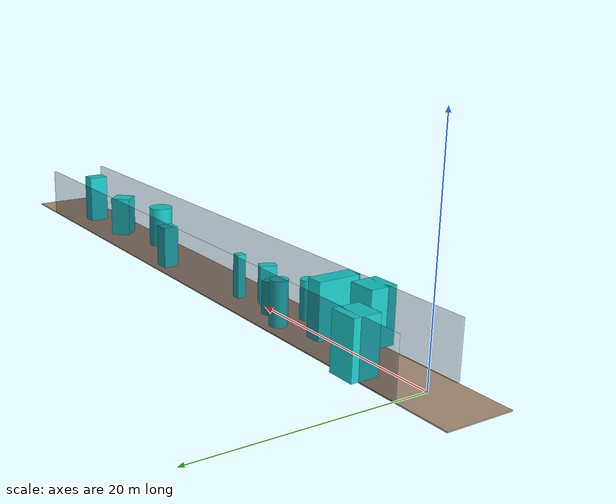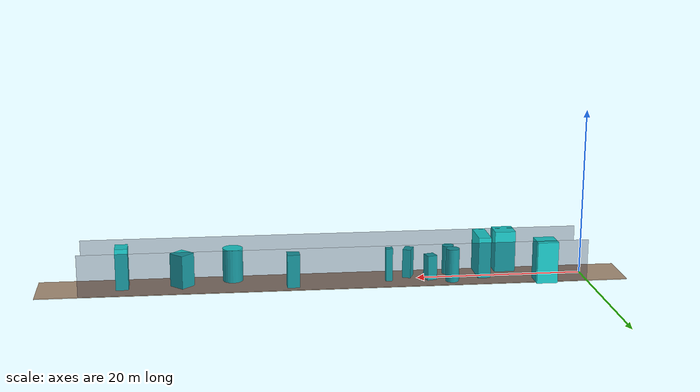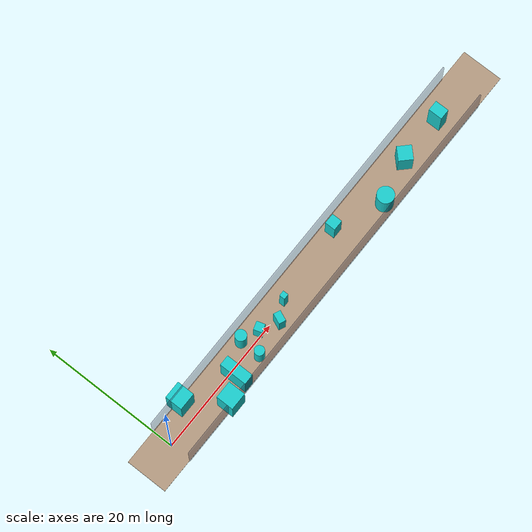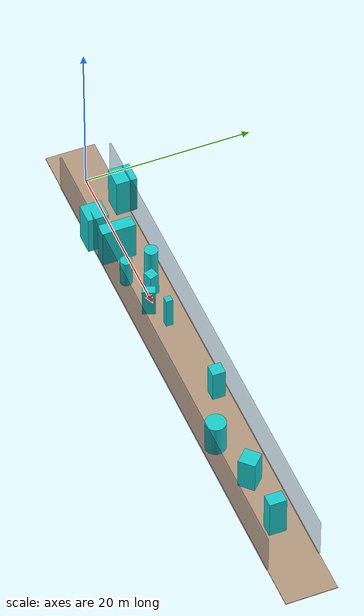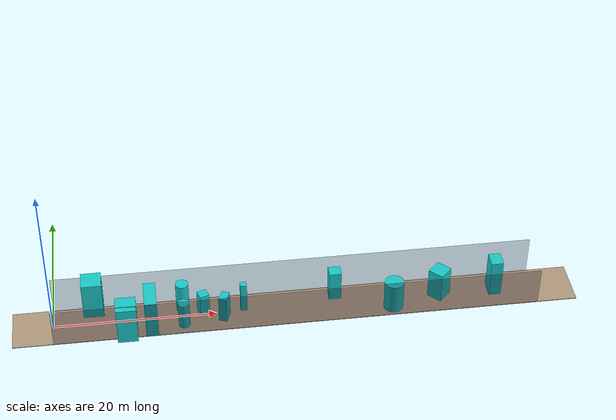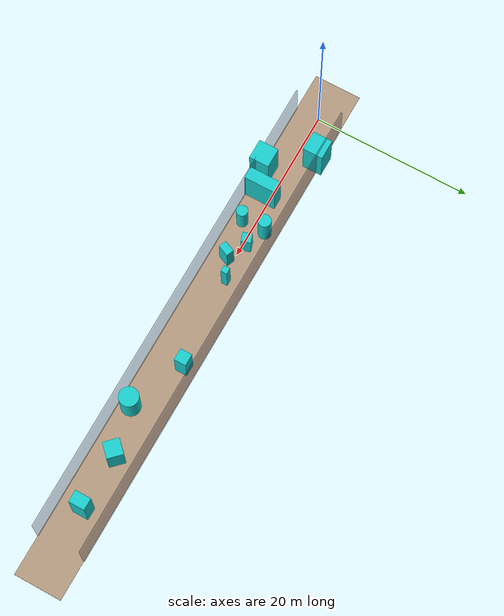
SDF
<sdf version="1.9">
 <world name="corridor">
  <physics type="ode">
   <max_step_size>0.004</max_step_size>
   <real_time_factor>1.0</real_time_factor>
   <real_time_update_rate>250</real_time_update_rate>
  </physics>
  <plugin name="gz::sim::systems::Physics" filename="gz-sim-physics-system"/>
  <plugin name="gz::sim::systems::UserCommands" filename="gz-sim-user-commands-system"/>
  <plugin name="gz::sim::systems::SceneBroadcaster" filename="gz-sim-scene-broadcaster-system"/>
  <plugin name="gz::sim::systems::Contact" filename="gz-sim-contact-system"/>
  <plugin name="gz::sim::systems::Imu" filename="gz-sim-imu-system"/>
  <plugin name="gz::sim::systems::Magnetometer" filename="gz-sim-magnetometer-system"/>
  <plugin name="gz::sim::systems::AirPressure" filename="gz-sim-air-pressure-system"/>
  <plugin name="gz::sim::systems::ApplyLinkWrench" filename="gz-sim-apply-link-wrench-system"/>
  <plugin name="gz::sim::systems::NavSat" filename="gz-sim-navsat-system"/>
  <plugin name="gz::sim::systems::Sensors" filename="gz-sim-sensors-system">
   <render_engine>ogre2</render_engine>
  </plugin>
  <gravity>0 0 -9.8</gravity>
  <magnetic_field>6e-06 2.3e-05 -4.2e-05</magnetic_field>
  <atmosphere type="adiabatic"/>
  <scene>
   <grid>false</grid>
   <ambient>0.6 0.6 0.6 1</ambient>
   <background>0.9 0.4 0.2 1</background>
   <shadows>true</shadows>
   <sky>true</sky>
  </scene>
  <model name="course_ground">
   <static>true</static>
   <pose>30 0 -0.05 0 0 0</pose>
   <link name="link">
    <collision name="collision"><geometry><box><size>70 6 0.1</size></box></geometry></collision>
    <visual name="visual">
     <geometry><box><size>70 6 0.1</size></box></geometry>
     <material>
      <ambient>0.7 0.6 0.5 1</ambient>
      <diffuse>0.7 0.6 0.5 1</diffuse>
      <specular>0.1 0.1 0.1 1</specular>
      <pbr><metal><roughness>0.9</roughness><metalness>0.1</metalness></metal></pbr>
     </material>
    </visual>
   </link>
  </model>
  <light name="sun_main" type="directional">
   <pose>0 0 500 0 0 0</pose>
   <intensity>1.0</intensity>
   <direction>0.3 0.5 -0.8</direction>
   <diffuse>1 1 1 1</diffuse>
   <specular>0.2 0.2 0.2 1</specular>
  </light>
  <light name="sun_fill_1" type="directional">
   <pose>-10 10 10 0 0 0</pose>
   <cast_shadows>false</cast_shadows>
   <intensity>0.6</intensity>
   <direction>0.5 -0.5 -0.5</direction>
   <diffuse>0.1 0.8 0.8 1</diffuse>
   <specular>0.1 0.1 0.1 1</specular>
  </light>
  <light name="sun_fill_2" type="directional">
   <pose>-10 -10 10 0 0 0</pose>
   <cast_shadows>false</cast_shadows>
   <intensity>0.6</intensity>
   <direction>0.5 0.5 -0.5</direction>
   <diffuse>0.1 0.8 0.8 1</diffuse>
   <specular>0.1 0.1 0.1 1</specular>
  </light>
  <model name="wall_left_transparent">
   <pose>30 3 2.5 0 0 0</pose>
   <static>true</static>
   <link name="link">
    <collision name="collision"><geometry><box><size>60 0.2 5</size></box></geometry></collision>
    <visual name="visual">
     <geometry><box><size>60 0.2 5</size></box></geometry>
     <material>
      <ambient>0.1 0.1 0.2 0.3</ambient>
      <diffuse>0.1 0.1 0.2 0.3</diffuse>
      <specular>0.5 0.5 0.5 1</specular>
      <pbr><metal><roughness>0.1</roughness><metalness>0.0</metalness></metal></pbr>
     </material>
    </visual>
   </link>
  </model>
  <model name="wall_right_transparent">
   <pose>30 -3 2.5 0 0 0</pose>
   <static>true</static>
   <link name="link">
    <collision name="collision"><geometry><box><size>60 0.2 5</size></box></geometry></collision>
    <visual name="visual">
     <geometry><box><size>60 0.2 5</size></box></geometry>
     <material>
      <ambient>0.1 0.1 0.2 0.3</ambient>
      <diffuse>0.1 0.1 0.2 0.3</diffuse>
      <specular>0.5 0.5 0.5 1</specular>
      <pbr><metal><roughness>0.1</roughness><metalness>0.0</metalness></metal></pbr>
     </material>
    </visual>
   </link>
  </model>
  <model name="box_blocker_top_left">
   <pose>5 2.5 2.5 0 0 0</pose>
   <static>true</static>
   <link name="link">
    <collision name="c"><geometry><box><size>2.5 2.5 5</size></box></geometry></collision>
    <visual name="v">
     <geometry><box><size>2.5 2.5 5</size></box></geometry>
     <material>
      <ambient>0.1 0.8 0.8 1</ambient>
      <diffuse>0.1 0.8 0.8 1</diffuse>
      <specular>0.5 0.5 0.5 1</specular>
      <pbr><metal><roughness>0.3</roughness><metalness>0.1</metalness></metal></pbr>
     </material>
    </visual>
   </link>
  </model>
  <model name="box_blocker_bottom_right">
   <pose>9 -2.5 2.5 0 0 0</pose>
   <static>true</static>
   <link name="link">
    <collision name="c"><geometry><box><size>2.5 2.5 5</size></box></geometry></collision>
    <visual name="v">
     <geometry><box><size>2.5 2.5 5</size></box></geometry>
     <material>
      <ambient>0.1 0.8 0.8 1</ambient>
      <diffuse>0.1 0.8 0.8 1</diffuse>
      <specular>0.5 0.5 0.5 1</specular>
      <pbr><metal><roughness>0.3</roughness><metalness>0.1</metalness></metal></pbr>
     </material>
    </visual>
   </link>
  </model>
  <model name="wall_blocker_right">
   <pose>12 -1 2.5 0 0 0</pose>
   <static>true</static>
   <link name="link">
    <collision name="c"><geometry><box><size>1.5 4 5</size></box></geometry></collision>
    <visual name="v">
     <geometry><box><size>1.5 4 5</size></box></geometry>
     <material>
      <ambient>0.1 0.8 0.8 1</ambient>
      <diffuse>0.1 0.8 0.8 1</diffuse>
      <specular>0.5 0.5 0.5 1</specular>
      <pbr><metal><roughness>0.3</roughness><metalness>0.1</metalness></metal></pbr>
     </material>
    </visual>
   </link>
  </model>
  <model name="tall_cylinder_obstacle_1">
   <pose>16 1.5 2 0 0 0</pose>
   <static>true</static>
   <link name="link">
    <collision name="c">
     <geometry><cylinder><radius>0.8</radius><length>4</length></cylinder></geometry>
    </collision>
    <visual name="v">
     <geometry><cylinder><radius>0.8</radius><length>4</length></cylinder></geometry>
     <material>
      <ambient>0.1 0.8 0.8 1</ambient>
      <diffuse>0.1 0.8 0.8 1</diffuse>
      <specular>0.5 0.5 0.5 1</specular>
      <pbr><metal><roughness>0.4</roughness><metalness>0.15</metalness></metal></pbr>
     </material>
    </visual>
   </link>
  </model>
  <model name="tall_cylinder_obstacle_2">
   <pose>16 -1.5 1.75 0 0 0</pose>
   <static>true</static>
   <link name="link">
    <collision name="c">
     <geometry><cylinder><radius>0.7</radius><length>3.5</length></cylinder></geometry>
    </collision>
    <visual name="v">
     <geometry><cylinder><radius>0.7</radius><length>3.5</length></cylinder></geometry>
     <material>
      <ambient>0.1 0.8 0.8 1</ambient>
      <diffuse>0.1 0.8 0.8 1</diffuse>
      <specular>0.5 0.5 0.5 1</specular>
      <pbr><metal><roughness>0.4</roughness><metalness>0.15</metalness></metal></pbr>
     </material>
    </visual>
   </link>
  </model>
  <model name="tall_box_obstacle_1">
   <pose>18.5 0.5 1.5 0 0 0.3</pose>
   <static>true</static>
   <link name="link">
    <collision name="c"><geometry><box><size>1.2 1.2 3</size></box></geometry></collision>
    <visual name="v">
     <geometry><box><size>1.2 1.2 3</size></box></geometry>
     <material>
      <ambient>0.1 0.8 0.8 1</ambient>
      <diffuse>0.1 0.8 0.8 1</diffuse>
      <specular>0.5 0.5 0.5 1</specular>
      <pbr><metal><roughness>0.35</roughness><metalness>0.12</metalness></metal></pbr>
     </material>
    </visual>
   </link>
  </model>
  <model name="tall_box_obstacle_2">
   <pose>21 -0.8 1.75 0 0 -0.4</pose>
   <static>true</static>
   <link name="link">
    <collision name="c"><geometry><box><size>1 1.5 3.5</size></box></geometry></collision>
    <visual name="v">
     <geometry><box><size>1 1.5 3.5</size></box></geometry>
     <material>
      <ambient>0.1 0.8 0.8 1</ambient>
      <diffuse>0.1 0.8 0.8 1</diffuse>
      <specular>0.5 0.5 0.5 1</specular>
      <pbr><metal><roughness>0.35</roughness><metalness>0.12</metalness></metal></pbr>
     </material>
    </visual>
   </link>
  </model>
  <model name="tall_pillar_obstacle">
   <pose>23.5 0.5 2 0 0 0</pose>
   <static>true</static>
   <link name="link">
    <collision name="c"><geometry><box><size>0.8 0.8 4</size></box></geometry></collision>
    <visual name="v">
     <geometry><box><size>0.8 0.8 4</size></box></geometry>
     <material>
      <ambient>0.1 0.8 0.8 1</ambient>
      <diffuse>0.1 0.8 0.8 1</diffuse>
      <specular>0.5 0.5 0.5 1</specular>
      <pbr><metal><roughness>0.3</roughness><metalness>0.15</metalness></metal></pbr>
     </material>
    </visual>
   </link>
  </model>
  <model name="finish_center_post">
   <pose>55 0 2.5 0 0 0</pose>
   <static>true</static>
   <link name="link">
    <collision name="c"><geometry><box><size>1.5 2 5</size></box></geometry></collision>
    <visual name="v">
     <geometry><box><size>1.5 2 5</size></box></geometry>
     <material>
      <ambient>0.1 0.8 0.8 1</ambient>
      <diffuse>0.1 0.8 0.8 1</diffuse>
      <specular>0.5 0.5 0.5 1</specular>
      <pbr><metal><roughness>0.3</roughness><metalness>0.1</metalness></metal></pbr>
     </material>
    </visual>
   </link>
  </model>
  <model name="tall_box_obstacle_3">
   <pose>35 1.5 2 0 0 0</pose>
   <static>true</static>
   <link name="link">
    <collision name="c"><geometry><box><size>1.5 1.5 4</size></box></geometry></collision>
    <visual name="v">
     <geometry><box><size>1.5 1.5 4</size></box></geometry>
     <material><ambient>0.1 0.8 0.8 1</ambient><diffuse>0.1 0.8 0.8 1</diffuse></material>
    </visual>
   </link>
  </model>
  <model name="tall_cylinder_obstacle_3">
   <pose>42 -1.5 2 0 0 0</pose>
   <static>true</static>
   <link name="link">
    <collision name="c">
     <geometry><cylinder><radius>1.2</radius><length>4</length></cylinder></geometry>
    </collision>
    <visual name="v">
     <geometry><cylinder><radius>1.2</radius><length>4</length></cylinder></geometry>
     <material><ambient>0.1 0.8 0.8 1</ambient><diffuse>0.1 0.8 0.8 1</diffuse></material>
    </visual>
   </link>
  </model>
  <model name="tall_box_obstacle_4">
   <pose>48 0 2 0 0 0.785</pose>
   <static>true</static>
   <link name="link">
    <collision name="c"><geometry><box><size>2 2 4</size></box></geometry></collision>
    <visual name="v">
     <geometry><box><size>2 2 4</size></box></geometry>
     <material><ambient>0.1 0.8 0.8 1</ambient><diffuse>0.1 0.8 0.8 1</diffuse></material>
    </visual>
   </link>
  </model>
  <spherical_coordinates>
   <surface_model>EARTH_WGS84</surface_model>
   <world_frame_orientation>ENU</world_frame_orientation>
   <latitude_deg>47.397971</latitude_deg>
   <longitude_deg>8.546164</longitude_deg>
   <elevation>0</elevation>
  </spherical_coordinates>
 </world>
</sdf>
